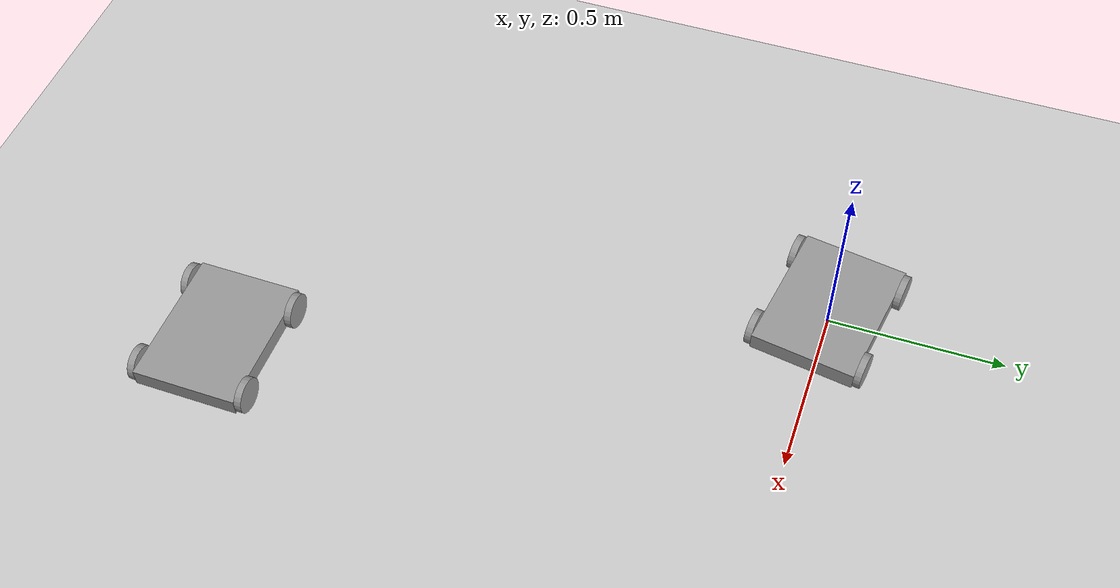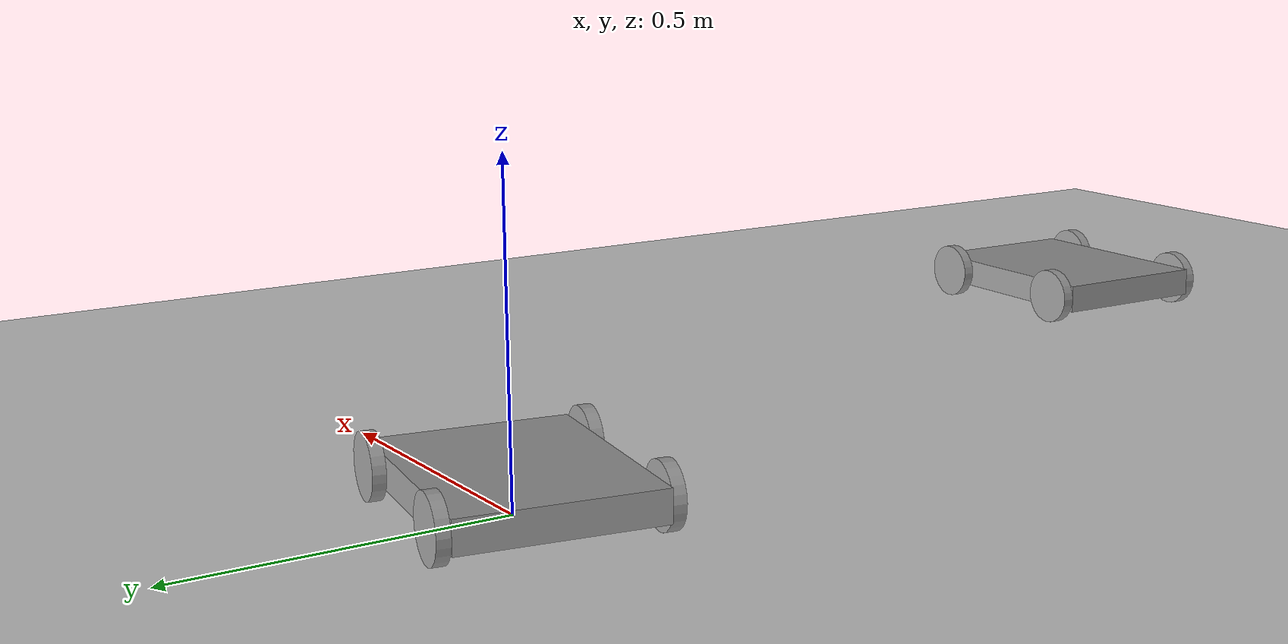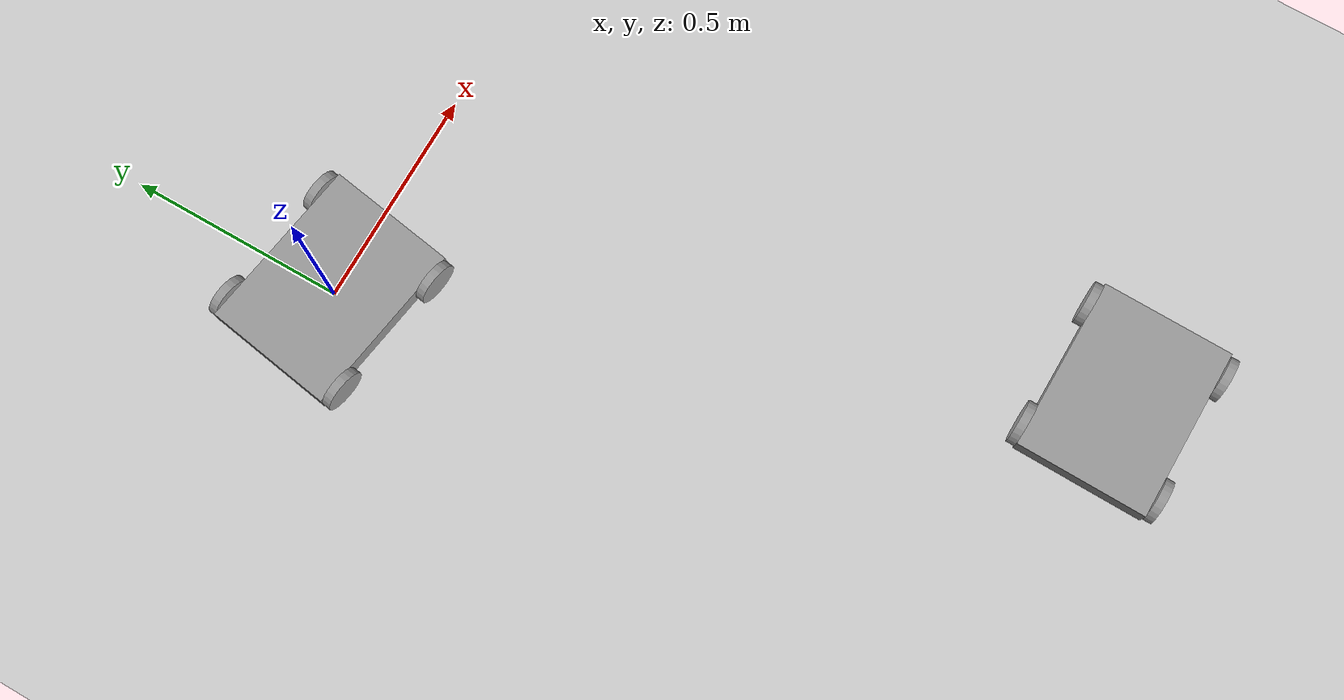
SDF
<sdf version="1.6">
 <world name="default">
  <model name="ground_plane">
   <static>1</static>
   <link name="link">
    <collision name="collision">
     <geometry><plane><normal>0 0 1</normal><size>100 100</size></plane></geometry>
     <surface><friction><ode><mu>100</mu><mu2>50</mu2></ode></friction></surface>
    </collision>
    <visual name="visual">
     <cast_shadows>0</cast_shadows>
     <geometry><plane><normal>0 0 1</normal><size>100 100</size></plane></geometry>
     <material>
      <script><uri>file://media/materials/scripts/gazebo.material</uri><name>Gazebo/Grey</name></script>
     </material>
    </visual>
   </link>
  </model>
  <model name="HumanoidRobot_0">
   <link name="link_2">
    <pose>0 0 0.05 0 -0 0</pose>
    <inertial>
     <mass>1</mass>
     <inertia>
      <ixx>0.166667</ixx>
      <ixy>0</ixy>
      <ixz>0</ixz>
      <iyy>0.166667</iyy>
      <iyz>0</iyz>
      <izz>0.166667</izz>
     </inertia>
    </inertial>
    <visual name="visual">
     <geometry><box><size>0.4 0.3 0.05</size></box></geometry>
     <material>
      <lighting>1</lighting>
      <script><uri>file://media/materials/scripts/gazebo.material</uri><name>Gazebo/Grey</name></script>
      <shader type="pixel"><normal_map>__default__</normal_map></shader>
      <ambient>0.3 0.3 0.3 1</ambient>
      <diffuse>0.7 0.7 0.7 1</diffuse>
      <specular>0.01 0.01 0.01 1</specular>
      <emissive>0 0 0 1</emissive>
     </material>
    </visual>
    <collision name="collision">
     <geometry><box><size>0.4 0.3 0.05</size></box></geometry>
     <surface>
      <friction>
       <ode><mu>1</mu><mu2>1</mu2><fdir1>0 0 0</fdir1><slip1>0</slip1><slip2>0</slip2></ode>
       <torsional>
        <coefficient>1</coefficient>
        <patch_radius>0</patch_radius>
        <surface_radius>0</surface_radius>
        <use_patch_radius>1</use_patch_radius>
        <ode><slip>0</slip></ode>
       </torsional>
      </friction>
      <bounce><restitution_coefficient>0</restitution_coefficient><threshold>1e+06</threshold></bounce>
      <contact>
       <collide_without_contact>0</collide_without_contact>
       <collide_without_contact_bitmask>1</collide_without_contact_bitmask>
       <collide_bitmask>1</collide_bitmask>
       <ode>
        <soft_cfm>0</soft_cfm>
        <soft_erp>0.2</soft_erp>
        <kp>1e+13</kp>
        <kd>1</kd>
        <max_vel>0.01</max_vel>
        <min_depth>0</min_depth>
       </ode>
       <bullet>
        <split_impulse>1</split_impulse>
        <split_impulse_penetration_threshold>-0.01</split_impulse_penetration_threshold>
        <soft_cfm>0</soft_cfm>
        <soft_erp>0.2</soft_erp>
        <kp>1e+13</kp>
        <kd>1</kd>
       </bullet>
      </contact>
     </surface>
    </collision>
   </link>
   <link name="link_3">
    <pose>-0.15 -0.16 0.05001 1.5708 -0 0</pose>
    <inertial>
     <mass>1</mass>
     <inertia><ixx>0.145833</ixx><ixy>0</ixy><ixz>0</ixz><iyy>0.145833</iyy><iyz>0</iyz><izz>0.125</izz></inertia>
    </inertial>
    <visual name="visual">
     <geometry><cylinder><radius>0.05</radius><length>0.02</length></cylinder></geometry>
     <material>
      <lighting>1</lighting>
      <script><uri>file://media/materials/scripts/gazebo.material</uri><name>Gazebo/Grey</name></script>
      <shader type="pixel"><normal_map>__default__</normal_map></shader>
      <ambient>0.3 0.3 0.3 1</ambient>
      <diffuse>0.7 0.7 0.7 1</diffuse>
      <specular>0.01 0.01 0.01 1</specular>
      <emissive>0 0 0 1</emissive>
     </material>
    </visual>
    <collision name="collision">
     <geometry><cylinder><radius>0.05</radius><length>0.02</length></cylinder></geometry>
     <surface>
      <friction>
       <ode><mu>1</mu><mu2>1</mu2><fdir1>0 0 0</fdir1><slip1>0</slip1><slip2>0</slip2></ode>
       <torsional>
        <coefficient>1</coefficient>
        <patch_radius>0</patch_radius>
        <surface_radius>0</surface_radius>
        <use_patch_radius>1</use_patch_radius>
        <ode><slip>0</slip></ode>
       </torsional>
      </friction>
      <bounce><restitution_coefficient>0</restitution_coefficient><threshold>1e+06</threshold></bounce>
      <contact>
       <collide_without_contact>0</collide_without_contact>
       <collide_without_contact_bitmask>1</collide_without_contact_bitmask>
       <collide_bitmask>1</collide_bitmask>
       <ode>
        <soft_cfm>0</soft_cfm>
        <soft_erp>0.2</soft_erp>
        <kp>1e+13</kp>
        <kd>1</kd>
        <max_vel>0.01</max_vel>
        <min_depth>0</min_depth>
       </ode>
       <bullet>
        <split_impulse>1</split_impulse>
        <split_impulse_penetration_threshold>-0.01</split_impulse_penetration_threshold>
        <soft_cfm>0</soft_cfm>
        <soft_erp>0.2</soft_erp>
        <kp>1e+13</kp>
        <kd>1</kd>
       </bullet>
      </contact>
     </surface>
    </collision>
   </link>
   <link name="link_3_clone">
    <pose>0.15 0.16 0.05 1.5708 -0 0</pose>
    <inertial>
     <mass>1</mass>
     <inertia><ixx>0.145833</ixx><ixy>0</ixy><ixz>0</ixz><iyy>0.145833</iyy><iyz>0</iyz><izz>0.125</izz></inertia>
    </inertial>
    <visual name="visual">
     <geometry><cylinder><radius>0.05</radius><length>0.02</length></cylinder></geometry>
     <material>
      <lighting>1</lighting>
      <script><uri>file://media/materials/scripts/gazebo.material</uri><name>Gazebo/Grey</name></script>
      <shader type="pixel"><normal_map>__default__</normal_map></shader>
      <ambient>0.3 0.3 0.3 1</ambient>
      <diffuse>0.7 0.7 0.7 1</diffuse>
      <specular>0.01 0.01 0.01 1</specular>
      <emissive>0 0 0 1</emissive>
     </material>
    </visual>
    <collision name="collision">
     <geometry><cylinder><radius>0.05</radius><length>0.02</length></cylinder></geometry>
     <surface>
      <friction>
       <ode><mu>1</mu><mu2>1</mu2><fdir1>0 0 0</fdir1><slip1>0</slip1><slip2>0</slip2></ode>
       <torsional>
        <coefficient>1</coefficient>
        <patch_radius>0</patch_radius>
        <surface_radius>0</surface_radius>
        <use_patch_radius>1</use_patch_radius>
        <ode><slip>0</slip></ode>
       </torsional>
      </friction>
      <bounce><restitution_coefficient>0</restitution_coefficient><threshold>1e+06</threshold></bounce>
      <contact>
       <collide_without_contact>0</collide_without_contact>
       <collide_without_contact_bitmask>1</collide_without_contact_bitmask>
       <collide_bitmask>1</collide_bitmask>
       <ode>
        <soft_cfm>0</soft_cfm>
        <soft_erp>0.2</soft_erp>
        <kp>1e+13</kp>
        <kd>1</kd>
        <max_vel>0.01</max_vel>
        <min_depth>0</min_depth>
       </ode>
       <bullet>
        <split_impulse>1</split_impulse>
        <split_impulse_penetration_threshold>-0.01</split_impulse_penetration_threshold>
        <soft_cfm>0</soft_cfm>
        <soft_erp>0.2</soft_erp>
        <kp>1e+13</kp>
        <kd>1</kd>
       </bullet>
      </contact>
     </surface>
    </collision>
   </link>
   <link name="link_3_clone_0">
    <pose>0.15 -0.16 0.05 1.5708 -0 0</pose>
    <inertial>
     <mass>1</mass>
     <inertia><ixx>0.145833</ixx><ixy>0</ixy><ixz>0</ixz><iyy>0.145833</iyy><iyz>0</iyz><izz>0.125</izz></inertia>
    </inertial>
    <visual name="visual">
     <geometry><cylinder><radius>0.05</radius><length>0.02</length></cylinder></geometry>
     <material>
      <lighting>1</lighting>
      <script><uri>file://media/materials/scripts/gazebo.material</uri><name>Gazebo/Grey</name></script>
      <shader type="pixel"><normal_map>__default__</normal_map></shader>
      <ambient>0.3 0.3 0.3 1</ambient>
      <diffuse>0.7 0.7 0.7 1</diffuse>
      <specular>0.01 0.01 0.01 1</specular>
      <emissive>0 0 0 1</emissive>
     </material>
    </visual>
    <collision name="collision">
     <geometry><cylinder><radius>0.05</radius><length>0.02</length></cylinder></geometry>
     <surface>
      <friction>
       <ode><mu>1</mu><mu2>1</mu2><fdir1>0 0 0</fdir1><slip1>0</slip1><slip2>0</slip2></ode>
       <torsional>
        <coefficient>1</coefficient>
        <patch_radius>0</patch_radius>
        <surface_radius>0</surface_radius>
        <use_patch_radius>1</use_patch_radius>
        <ode><slip>0</slip></ode>
       </torsional>
      </friction>
      <bounce><restitution_coefficient>0</restitution_coefficient><threshold>1e+06</threshold></bounce>
      <contact>
       <collide_without_contact>0</collide_without_contact>
       <collide_without_contact_bitmask>1</collide_without_contact_bitmask>
       <collide_bitmask>1</collide_bitmask>
       <ode>
        <soft_cfm>0</soft_cfm>
        <soft_erp>0.2</soft_erp>
        <kp>1e+13</kp>
        <kd>1</kd>
        <max_vel>0.01</max_vel>
        <min_depth>0</min_depth>
       </ode>
       <bullet>
        <split_impulse>1</split_impulse>
        <split_impulse_penetration_threshold>-0.01</split_impulse_penetration_threshold>
        <soft_cfm>0</soft_cfm>
        <soft_erp>0.2</soft_erp>
        <kp>1e+13</kp>
        <kd>1</kd>
       </bullet>
      </contact>
     </surface>
    </collision>
   </link>
   <link name="link_3_clone_1">
    <pose>-0.15 0.16 0.05 1.5708 -0 0</pose>
    <inertial>
     <mass>1</mass>
     <inertia><ixx>0.145833</ixx><ixy>0</ixy><ixz>0</ixz><iyy>0.145833</iyy><iyz>0</iyz><izz>0.125</izz></inertia>
    </inertial>
    <visual name="visual">
     <geometry><cylinder><radius>0.05</radius><length>0.02</length></cylinder></geometry>
     <material>
      <lighting>1</lighting>
      <script><uri>file://media/materials/scripts/gazebo.material</uri><name>Gazebo/Grey</name></script>
      <shader type="pixel"><normal_map>__default__</normal_map></shader>
      <ambient>0.3 0.3 0.3 1</ambient>
      <diffuse>0.7 0.7 0.7 1</diffuse>
      <specular>0.01 0.01 0.01 1</specular>
      <emissive>0 0 0 1</emissive>
     </material>
    </visual>
    <collision name="collision">
     <geometry><cylinder><radius>0.05</radius><length>0.02</length></cylinder></geometry>
     <surface>
      <friction>
       <ode><mu>1</mu><mu2>1</mu2><fdir1>0 0 0</fdir1><slip1>0</slip1><slip2>0</slip2></ode>
       <torsional>
        <coefficient>1</coefficient>
        <patch_radius>0</patch_radius>
        <surface_radius>0</surface_radius>
        <use_patch_radius>1</use_patch_radius>
        <ode><slip>0</slip></ode>
       </torsional>
      </friction>
      <bounce><restitution_coefficient>0</restitution_coefficient><threshold>1e+06</threshold></bounce>
      <contact>
       <collide_without_contact>0</collide_without_contact>
       <collide_without_contact_bitmask>1</collide_without_contact_bitmask>
       <collide_bitmask>1</collide_bitmask>
       <ode>
        <soft_cfm>0</soft_cfm>
        <soft_erp>0.2</soft_erp>
        <kp>1e+13</kp>
        <kd>1</kd>
        <max_vel>0.01</max_vel>
        <min_depth>0</min_depth>
       </ode>
       <bullet>
        <split_impulse>1</split_impulse>
        <split_impulse_penetration_threshold>-0.01</split_impulse_penetration_threshold>
        <soft_cfm>0</soft_cfm>
        <soft_erp>0.2</soft_erp>
        <kp>1e+13</kp>
        <kd>1</kd>
       </bullet>
      </contact>
     </surface>
    </collision>
   </link>
   <joint name="link_2_JOINT_0" type="revolute">
    <parent>link_2</parent>
    <child>link_3</child>
    <axis>
     <xyz>1 0 0</xyz>
     <use_parent_model_frame>0</use_parent_model_frame>
     <limit>
      <lower>-1.79769e+308</lower>
      <upper>1.79769e+308</upper>
      <effort>-1</effort>
      <velocity>-1</velocity>
     </limit>
     <dynamics>
      <spring_reference>0</spring_reference>
      <spring_stiffness>0</spring_stiffness>
      <damping>0</damping>
     </dynamics>
    </axis>
    <physics>
     <ode><limit><cfm>0</cfm><erp>0.2</erp></limit><suspension><cfm>0</cfm><erp>0.2</erp></suspension></ode>
    </physics>
   </joint>
   <joint name="link_2_JOINT_2" type="revolute">
    <parent>link_2</parent>
    <child>link_3_clone_1</child>
    <axis>
     <xyz>1 0 0</xyz>
     <use_parent_model_frame>0</use_parent_model_frame>
     <limit>
      <lower>-1.79769e+308</lower>
      <upper>1.79769e+308</upper>
      <effort>-1</effort>
      <velocity>-1</velocity>
     </limit>
     <dynamics>
      <spring_reference>0</spring_reference>
      <spring_stiffness>0</spring_stiffness>
      <damping>0</damping>
     </dynamics>
    </axis>
    <physics>
     <ode><limit><cfm>0</cfm><erp>0.2</erp></limit><suspension><cfm>0</cfm><erp>0.2</erp></suspension></ode>
    </physics>
   </joint>
   <joint name="link_2_JOINT_3" type="revolute">
    <parent>link_2</parent>
    <child>link_3_clone_0</child>
    <axis>
     <xyz>1 0 0</xyz>
     <use_parent_model_frame>0</use_parent_model_frame>
     <limit>
      <lower>-1.79769e+308</lower>
      <upper>1.79769e+308</upper>
      <effort>-1</effort>
      <velocity>-1</velocity>
     </limit>
     <dynamics>
      <spring_reference>0</spring_reference>
      <spring_stiffness>0</spring_stiffness>
      <damping>0</damping>
     </dynamics>
    </axis>
    <physics>
     <ode><limit><cfm>0</cfm><erp>0.2</erp></limit><suspension><cfm>0</cfm><erp>0.2</erp></suspension></ode>
    </physics>
   </joint>
   <joint name="link_2_JOINT_4" type="revolute">
    <parent>link_2</parent>
    <child>link_3_clone</child>
    <axis>
     <xyz>1 0 0</xyz>
     <use_parent_model_frame>0</use_parent_model_frame>
     <limit>
      <lower>-1.79769e+308</lower>
      <upper>1.79769e+308</upper>
      <effort>-1</effort>
      <velocity>-1</velocity>
     </limit>
     <dynamics>
      <spring_reference>0</spring_reference>
      <spring_stiffness>0</spring_stiffness>
      <damping>0</damping>
     </dynamics>
    </axis>
    <physics>
     <ode><limit><cfm>0</cfm><erp>0.2</erp></limit><suspension><cfm>0</cfm><erp>0.2</erp></suspension></ode>
    </physics>
   </joint>
   <static>0</static>
   <pose>0.000135 -0.003503 0 1.4e-05 -1e-05 -0.158756</pose>
  </model>
  <model name="HumanoidRobot">
   <link name="link_2">
    <pose>0 0 0.05 0 -0 0</pose>
    <inertial>
     <mass>1</mass>
     <inertia>
      <ixx>0.166667</ixx>
      <ixy>0</ixy>
      <ixz>0</ixz>
      <iyy>0.166667</iyy>
      <iyz>0</iyz>
      <izz>0.166667</izz>
     </inertia>
    </inertial>
    <visual name="visual">
     <geometry><box><size>0.4 0.3 0.05</size></box></geometry>
     <material>
      <lighting>1</lighting>
      <script><uri>file://media/materials/scripts/gazebo.material</uri><name>Gazebo/Grey</name></script>
      <shader type="pixel"><normal_map>__default__</normal_map></shader>
      <ambient>0.3 0.3 0.3 1</ambient>
      <diffuse>0.7 0.7 0.7 1</diffuse>
      <specular>0.01 0.01 0.01 1</specular>
      <emissive>0 0 0 1</emissive>
     </material>
    </visual>
    <collision name="collision">
     <geometry><box><size>0.4 0.3 0.05</size></box></geometry>
     <surface>
      <friction>
       <ode><mu>1</mu><mu2>1</mu2><fdir1>0 0 0</fdir1><slip1>0</slip1><slip2>0</slip2></ode>
       <torsional>
        <coefficient>1</coefficient>
        <patch_radius>0</patch_radius>
        <surface_radius>0</surface_radius>
        <use_patch_radius>1</use_patch_radius>
        <ode><slip>0</slip></ode>
       </torsional>
      </friction>
      <bounce><restitution_coefficient>0</restitution_coefficient><threshold>1e+06</threshold></bounce>
      <contact>
       <collide_without_contact>0</collide_without_contact>
       <collide_without_contact_bitmask>1</collide_without_contact_bitmask>
       <collide_bitmask>1</collide_bitmask>
       <ode>
        <soft_cfm>0</soft_cfm>
        <soft_erp>0.2</soft_erp>
        <kp>1e+13</kp>
        <kd>1</kd>
        <max_vel>0.01</max_vel>
        <min_depth>0</min_depth>
       </ode>
       <bullet>
        <split_impulse>1</split_impulse>
        <split_impulse_penetration_threshold>-0.01</split_impulse_penetration_threshold>
        <soft_cfm>0</soft_cfm>
        <soft_erp>0.2</soft_erp>
        <kp>1e+13</kp>
        <kd>1</kd>
       </bullet>
      </contact>
     </surface>
    </collision>
   </link>
   <link name="link_3">
    <pose>-0.15 -0.16 0.05001 1.5708 -0 0</pose>
    <inertial>
     <mass>1</mass>
     <inertia><ixx>0.145833</ixx><ixy>0</ixy><ixz>0</ixz><iyy>0.145833</iyy><iyz>0</iyz><izz>0.125</izz></inertia>
    </inertial>
    <visual name="visual">
     <geometry><cylinder><radius>0.05</radius><length>0.02</length></cylinder></geometry>
     <material>
      <lighting>1</lighting>
      <script><uri>file://media/materials/scripts/gazebo.material</uri><name>Gazebo/Grey</name></script>
      <shader type="pixel"><normal_map>__default__</normal_map></shader>
      <ambient>0.3 0.3 0.3 1</ambient>
      <diffuse>0.7 0.7 0.7 1</diffuse>
      <specular>0.01 0.01 0.01 1</specular>
      <emissive>0 0 0 1</emissive>
     </material>
    </visual>
    <collision name="collision">
     <geometry><cylinder><radius>0.05</radius><length>0.02</length></cylinder></geometry>
     <surface>
      <friction>
       <ode><mu>1</mu><mu2>1</mu2><fdir1>0 0 0</fdir1><slip1>0</slip1><slip2>0</slip2></ode>
       <torsional>
        <coefficient>1</coefficient>
        <patch_radius>0</patch_radius>
        <surface_radius>0</surface_radius>
        <use_patch_radius>1</use_patch_radius>
        <ode><slip>0</slip></ode>
       </torsional>
      </friction>
      <bounce><restitution_coefficient>0</restitution_coefficient><threshold>1e+06</threshold></bounce>
      <contact>
       <collide_without_contact>0</collide_without_contact>
       <collide_without_contact_bitmask>1</collide_without_contact_bitmask>
       <collide_bitmask>1</collide_bitmask>
       <ode>
        <soft_cfm>0</soft_cfm>
        <soft_erp>0.2</soft_erp>
        <kp>1e+13</kp>
        <kd>1</kd>
        <max_vel>0.01</max_vel>
        <min_depth>0</min_depth>
       </ode>
       <bullet>
        <split_impulse>1</split_impulse>
        <split_impulse_penetration_threshold>-0.01</split_impulse_penetration_threshold>
        <soft_cfm>0</soft_cfm>
        <soft_erp>0.2</soft_erp>
        <kp>1e+13</kp>
        <kd>1</kd>
       </bullet>
      </contact>
     </surface>
    </collision>
   </link>
   <link name="link_3_clone">
    <pose>0.15 0.16 0.05 1.5708 -0 0</pose>
    <inertial>
     <mass>1</mass>
     <inertia><ixx>0.145833</ixx><ixy>0</ixy><ixz>0</ixz><iyy>0.145833</iyy><iyz>0</iyz><izz>0.125</izz></inertia>
    </inertial>
    <visual name="visual">
     <geometry><cylinder><radius>0.05</radius><length>0.02</length></cylinder></geometry>
     <material>
      <lighting>1</lighting>
      <script><uri>file://media/materials/scripts/gazebo.material</uri><name>Gazebo/Grey</name></script>
      <shader type="pixel"><normal_map>__default__</normal_map></shader>
      <ambient>0.3 0.3 0.3 1</ambient>
      <diffuse>0.7 0.7 0.7 1</diffuse>
      <specular>0.01 0.01 0.01 1</specular>
      <emissive>0 0 0 1</emissive>
     </material>
    </visual>
    <collision name="collision">
     <geometry><cylinder><radius>0.05</radius><length>0.02</length></cylinder></geometry>
     <surface>
      <friction>
       <ode><mu>1</mu><mu2>1</mu2><fdir1>0 0 0</fdir1><slip1>0</slip1><slip2>0</slip2></ode>
       <torsional>
        <coefficient>1</coefficient>
        <patch_radius>0</patch_radius>
        <surface_radius>0</surface_radius>
        <use_patch_radius>1</use_patch_radius>
        <ode><slip>0</slip></ode>
       </torsional>
      </friction>
      <bounce><restitution_coefficient>0</restitution_coefficient><threshold>1e+06</threshold></bounce>
      <contact>
       <collide_without_contact>0</collide_without_contact>
       <collide_without_contact_bitmask>1</collide_without_contact_bitmask>
       <collide_bitmask>1</collide_bitmask>
       <ode>
        <soft_cfm>0</soft_cfm>
        <soft_erp>0.2</soft_erp>
        <kp>1e+13</kp>
        <kd>1</kd>
        <max_vel>0.01</max_vel>
        <min_depth>0</min_depth>
       </ode>
       <bullet>
        <split_impulse>1</split_impulse>
        <split_impulse_penetration_threshold>-0.01</split_impulse_penetration_threshold>
        <soft_cfm>0</soft_cfm>
        <soft_erp>0.2</soft_erp>
        <kp>1e+13</kp>
        <kd>1</kd>
       </bullet>
      </contact>
     </surface>
    </collision>
   </link>
   <link name="link_3_clone_0">
    <pose>0.15 -0.16 0.05 1.5708 -0 0</pose>
    <inertial>
     <mass>1</mass>
     <inertia><ixx>0.145833</ixx><ixy>0</ixy><ixz>0</ixz><iyy>0.145833</iyy><iyz>0</iyz><izz>0.125</izz></inertia>
    </inertial>
    <visual name="visual">
     <geometry><cylinder><radius>0.05</radius><length>0.02</length></cylinder></geometry>
     <material>
      <lighting>1</lighting>
      <script><uri>file://media/materials/scripts/gazebo.material</uri><name>Gazebo/Grey</name></script>
      <shader type="pixel"><normal_map>__default__</normal_map></shader>
      <ambient>0.3 0.3 0.3 1</ambient>
      <diffuse>0.7 0.7 0.7 1</diffuse>
      <specular>0.01 0.01 0.01 1</specular>
      <emissive>0 0 0 1</emissive>
     </material>
    </visual>
    <collision name="collision">
     <geometry><cylinder><radius>0.05</radius><length>0.02</length></cylinder></geometry>
     <surface>
      <friction>
       <ode><mu>1</mu><mu2>1</mu2><fdir1>0 0 0</fdir1><slip1>0</slip1><slip2>0</slip2></ode>
       <torsional>
        <coefficient>1</coefficient>
        <patch_radius>0</patch_radius>
        <surface_radius>0</surface_radius>
        <use_patch_radius>1</use_patch_radius>
        <ode><slip>0</slip></ode>
       </torsional>
      </friction>
      <bounce><restitution_coefficient>0</restitution_coefficient><threshold>1e+06</threshold></bounce>
      <contact>
       <collide_without_contact>0</collide_without_contact>
       <collide_without_contact_bitmask>1</collide_without_contact_bitmask>
       <collide_bitmask>1</collide_bitmask>
       <ode>
        <soft_cfm>0</soft_cfm>
        <soft_erp>0.2</soft_erp>
        <kp>1e+13</kp>
        <kd>1</kd>
        <max_vel>0.01</max_vel>
        <min_depth>0</min_depth>
       </ode>
       <bullet>
        <split_impulse>1</split_impulse>
        <split_impulse_penetration_threshold>-0.01</split_impulse_penetration_threshold>
        <soft_cfm>0</soft_cfm>
        <soft_erp>0.2</soft_erp>
        <kp>1e+13</kp>
        <kd>1</kd>
       </bullet>
      </contact>
     </surface>
    </collision>
   </link>
   <link name="link_3_clone_1">
    <pose>-0.15 0.16 0.05 1.5708 -0 0</pose>
    <inertial>
     <mass>1</mass>
     <inertia><ixx>0.145833</ixx><ixy>0</ixy><ixz>0</ixz><iyy>0.145833</iyy><iyz>0</iyz><izz>0.125</izz></inertia>
    </inertial>
    <visual name="visual">
     <geometry><cylinder><radius>0.05</radius><length>0.02</length></cylinder></geometry>
     <material>
      <lighting>1</lighting>
      <script><uri>file://media/materials/scripts/gazebo.material</uri><name>Gazebo/Grey</name></script>
      <shader type="pixel"><normal_map>__default__</normal_map></shader>
      <ambient>0.3 0.3 0.3 1</ambient>
      <diffuse>0.7 0.7 0.7 1</diffuse>
      <specular>0.01 0.01 0.01 1</specular>
      <emissive>0 0 0 1</emissive>
     </material>
    </visual>
    <collision name="collision">
     <geometry><cylinder><radius>0.05</radius><length>0.02</length></cylinder></geometry>
     <surface>
      <friction>
       <ode><mu>1</mu><mu2>1</mu2><fdir1>0 0 0</fdir1><slip1>0</slip1><slip2>0</slip2></ode>
       <torsional>
        <coefficient>1</coefficient>
        <patch_radius>0</patch_radius>
        <surface_radius>0</surface_radius>
        <use_patch_radius>1</use_patch_radius>
        <ode><slip>0</slip></ode>
       </torsional>
      </friction>
      <bounce><restitution_coefficient>0</restitution_coefficient><threshold>1e+06</threshold></bounce>
      <contact>
       <collide_without_contact>0</collide_without_contact>
       <collide_without_contact_bitmask>1</collide_without_contact_bitmask>
       <collide_bitmask>1</collide_bitmask>
       <ode>
        <soft_cfm>0</soft_cfm>
        <soft_erp>0.2</soft_erp>
        <kp>1e+13</kp>
        <kd>1</kd>
        <max_vel>0.01</max_vel>
        <min_depth>0</min_depth>
       </ode>
       <bullet>
        <split_impulse>1</split_impulse>
        <split_impulse_penetration_threshold>-0.01</split_impulse_penetration_threshold>
        <soft_cfm>0</soft_cfm>
        <soft_erp>0.2</soft_erp>
        <kp>1e+13</kp>
        <kd>1</kd>
       </bullet>
      </contact>
     </surface>
    </collision>
   </link>
   <joint name="link_2_JOINT_0" type="revolute">
    <parent>link_2</parent>
    <child>link_3</child>
    <axis>
     <xyz>1 0 0</xyz>
     <use_parent_model_frame>0</use_parent_model_frame>
     <limit>
      <lower>-1.79769e+308</lower>
      <upper>1.79769e+308</upper>
      <effort>-1</effort>
      <velocity>-1</velocity>
     </limit>
     <dynamics>
      <spring_reference>0</spring_reference>
      <spring_stiffness>0</spring_stiffness>
      <damping>0</damping>
     </dynamics>
    </axis>
    <physics>
     <ode><limit><cfm>0</cfm><erp>0.2</erp></limit><suspension><cfm>0</cfm><erp>0.2</erp></suspension></ode>
    </physics>
   </joint>
   <joint name="link_2_JOINT_2" type="revolute">
    <parent>link_2</parent>
    <child>link_3_clone_1</child>
    <axis>
     <xyz>1 0 0</xyz>
     <use_parent_model_frame>0</use_parent_model_frame>
     <limit>
      <lower>-1.79769e+308</lower>
      <upper>1.79769e+308</upper>
      <effort>-1</effort>
      <velocity>-1</velocity>
     </limit>
     <dynamics>
      <spring_reference>0</spring_reference>
      <spring_stiffness>0</spring_stiffness>
      <damping>0</damping>
     </dynamics>
    </axis>
    <physics>
     <ode><limit><cfm>0</cfm><erp>0.2</erp></limit><suspension><cfm>0</cfm><erp>0.2</erp></suspension></ode>
    </physics>
   </joint>
   <joint name="link_2_JOINT_3" type="revolute">
    <parent>link_2</parent>
    <child>link_3_clone_0</child>
    <axis>
     <xyz>1 0 0</xyz>
     <use_parent_model_frame>0</use_parent_model_frame>
     <limit>
      <lower>-1.79769e+308</lower>
      <upper>1.79769e+308</upper>
      <effort>-1</effort>
      <velocity>-1</velocity>
     </limit>
     <dynamics>
      <spring_reference>0</spring_reference>
      <spring_stiffness>0</spring_stiffness>
      <damping>0</damping>
     </dynamics>
    </axis>
    <physics>
     <ode><limit><cfm>0</cfm><erp>0.2</erp></limit><suspension><cfm>0</cfm><erp>0.2</erp></suspension></ode>
    </physics>
   </joint>
   <joint name="link_2_JOINT_4" type="revolute">
    <parent>link_2</parent>
    <child>link_3_clone</child>
    <axis>
     <xyz>1 0 0</xyz>
     <use_parent_model_frame>0</use_parent_model_frame>
     <limit>
      <lower>-1.79769e+308</lower>
      <upper>1.79769e+308</upper>
      <effort>-1</effort>
      <velocity>-1</velocity>
     </limit>
     <dynamics>
      <spring_reference>0</spring_reference>
      <spring_stiffness>0</spring_stiffness>
      <damping>0</damping>
     </dynamics>
    </axis>
    <physics>
     <ode><limit><cfm>0</cfm><erp>0.2</erp></limit><suspension><cfm>0</cfm><erp>0.2</erp></suspension></ode>
    </physics>
   </joint>
   <static>0</static>
   <pose>0.619761 -1.5759 -1e-06 2e-06 -8e-06 -0.017529</pose>
  </model>
 </world>
</sdf>
